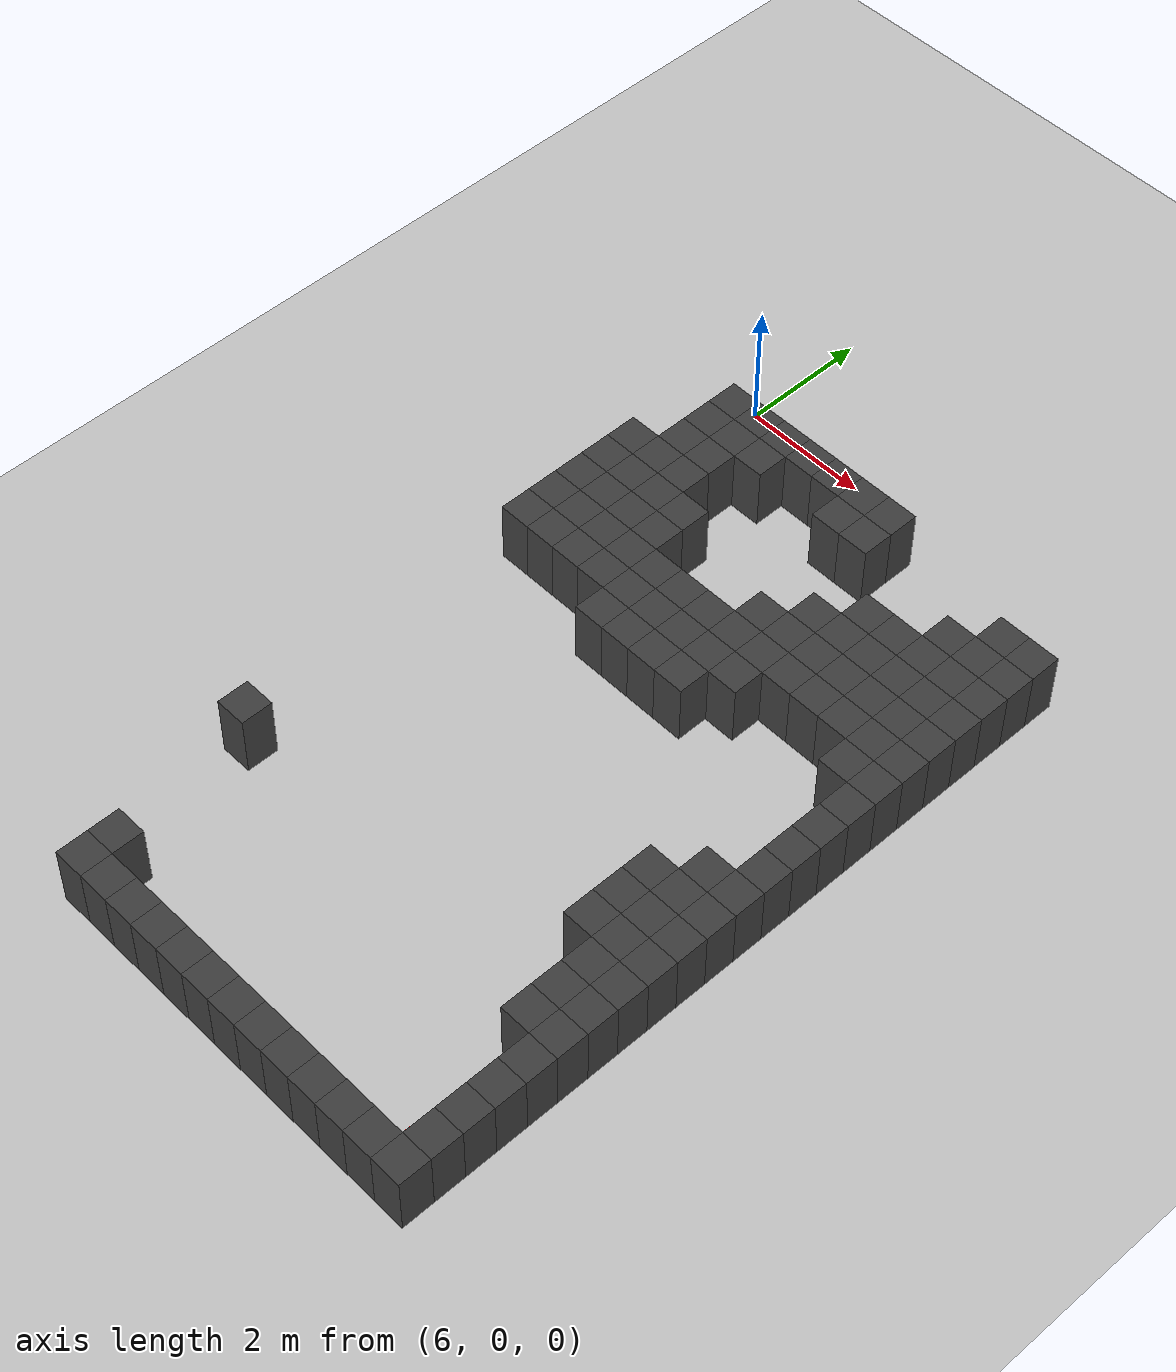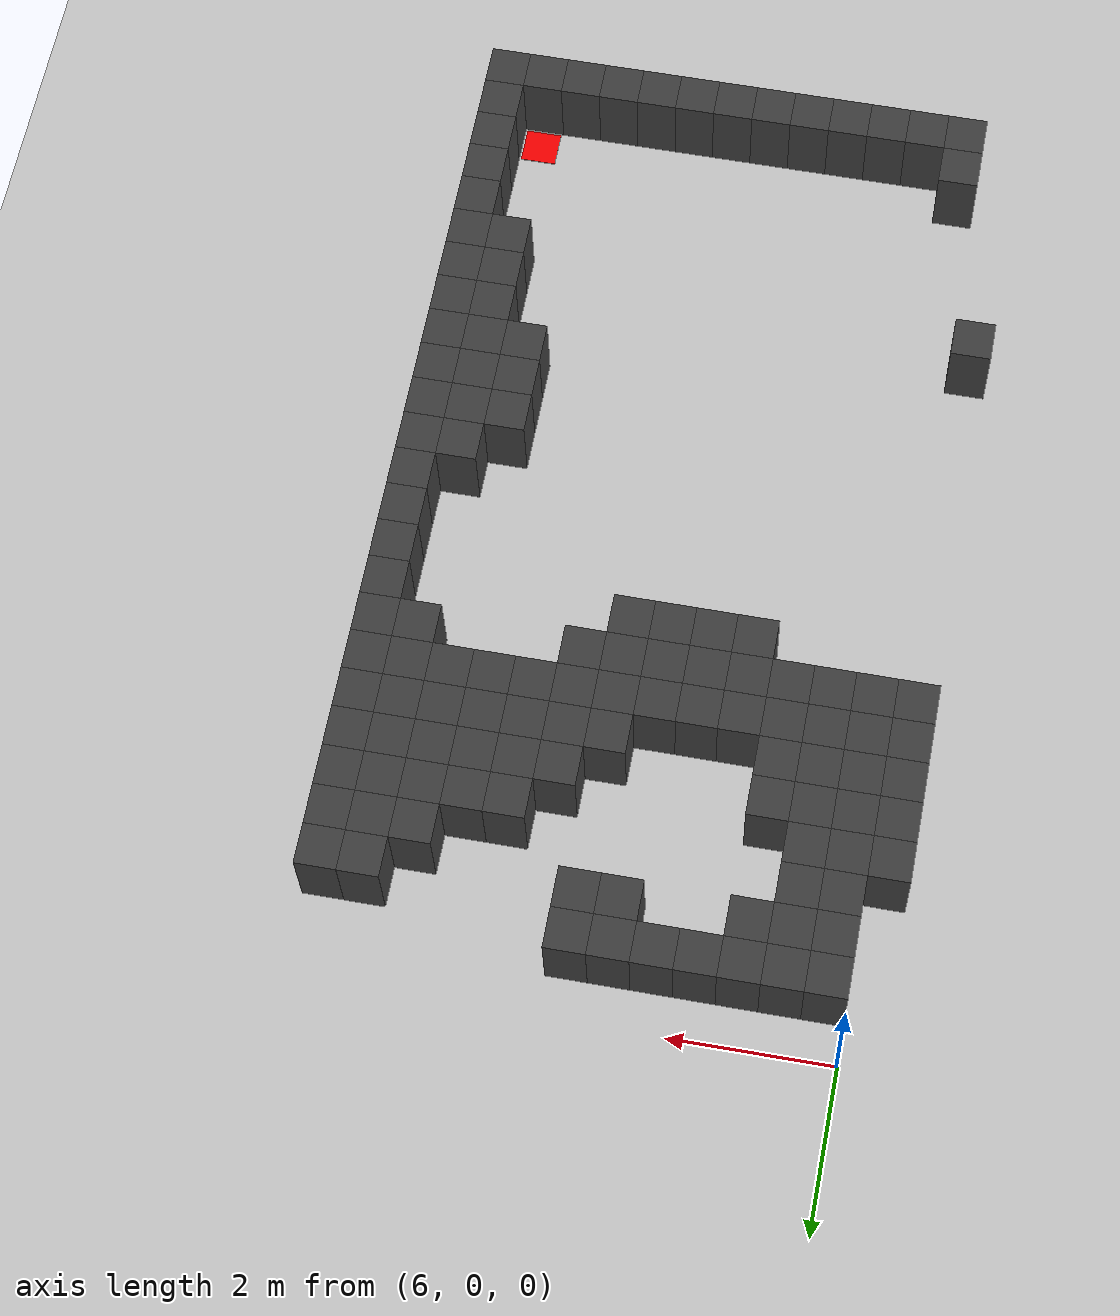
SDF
<sdf version="1.7">
 <world name="map_8074">
  <model name="ground_plane">
   <static>true</static>
   <link name="link">
    <collision name="collision">
     <geometry><plane><normal>0 0 1</normal><size>200 200</size></plane></geometry>
    </collision>
    <visual name="visual">
     <geometry><plane><normal>0 0 1</normal><size>200 200</size></plane></geometry>
     <material><ambient>0.8 0.8 0.8 1</ambient><diffuse>0.8 0.8 0.8 1</diffuse></material>
    </visual>
   </link>
  </model>
  <model name="maze_environment">
   <static>true</static>
   <link name="wall_391">
    <pose>6.250 -0.750 0.500 0 0 0</pose>
    <collision name="col"><geometry><box><size>0.5 0.5 1.0</size></box></geometry></collision>
    <visual name="vis">
     <geometry><box><size>0.5 0.5 1.0</size></box></geometry>
     <material><ambient>0.15 0.15 0.15 1</ambient><diffuse>0.25 0.25 0.25 1</diffuse></material>
    </visual>
   </link>
   <link name="wall_392">
    <pose>6.750 -0.750 0.500 0 0 0</pose>
    <collision name="col"><geometry><box><size>0.5 0.5 1.0</size></box></geometry></collision>
    <visual name="vis">
     <geometry><box><size>0.5 0.5 1.0</size></box></geometry>
     <material><ambient>0.15 0.15 0.15 1</ambient><diffuse>0.25 0.25 0.25 1</diffuse></material>
    </visual>
   </link>
   <link name="wall_393">
    <pose>7.250 -0.750 0.500 0 0 0</pose>
    <collision name="col"><geometry><box><size>0.5 0.5 1.0</size></box></geometry></collision>
    <visual name="vis">
     <geometry><box><size>0.5 0.5 1.0</size></box></geometry>
     <material><ambient>0.15 0.15 0.15 1</ambient><diffuse>0.25 0.25 0.25 1</diffuse></material>
    </visual>
   </link>
   <link name="wall_394">
    <pose>7.750 -0.750 0.500 0 0 0</pose>
    <collision name="col"><geometry><box><size>0.5 0.5 1.0</size></box></geometry></collision>
    <visual name="vis">
     <geometry><box><size>0.5 0.5 1.0</size></box></geometry>
     <material><ambient>0.15 0.15 0.15 1</ambient><diffuse>0.25 0.25 0.25 1</diffuse></material>
    </visual>
   </link>
   <link name="wall_395">
    <pose>8.250 -0.750 0.500 0 0 0</pose>
    <collision name="col"><geometry><box><size>0.5 0.5 1.0</size></box></geometry></collision>
    <visual name="vis">
     <geometry><box><size>0.5 0.5 1.0</size></box></geometry>
     <material><ambient>0.15 0.15 0.15 1</ambient><diffuse>0.25 0.25 0.25 1</diffuse></material>
    </visual>
   </link>
   <link name="wall_396">
    <pose>8.750 -0.750 0.500 0 0 0</pose>
    <collision name="col"><geometry><box><size>0.5 0.5 1.0</size></box></geometry></collision>
    <visual name="vis">
     <geometry><box><size>0.5 0.5 1.0</size></box></geometry>
     <material><ambient>0.15 0.15 0.15 1</ambient><diffuse>0.25 0.25 0.25 1</diffuse></material>
    </visual>
   </link>
   <link name="wall_397">
    <pose>9.250 -0.750 0.500 0 0 0</pose>
    <collision name="col"><geometry><box><size>0.5 0.5 1.0</size></box></geometry></collision>
    <visual name="vis">
     <geometry><box><size>0.5 0.5 1.0</size></box></geometry>
     <material><ambient>0.15 0.15 0.15 1</ambient><diffuse>0.25 0.25 0.25 1</diffuse></material>
    </visual>
   </link>
   <link name="wall_421">
    <pose>6.250 -1.250 0.500 0 0 0</pose>
    <collision name="col"><geometry><box><size>0.5 0.5 1.0</size></box></geometry></collision>
    <visual name="vis">
     <geometry><box><size>0.5 0.5 1.0</size></box></geometry>
     <material><ambient>0.15 0.15 0.15 1</ambient><diffuse>0.25 0.25 0.25 1</diffuse></material>
    </visual>
   </link>
   <link name="wall_422">
    <pose>6.750 -1.250 0.500 0 0 0</pose>
    <collision name="col"><geometry><box><size>0.5 0.5 1.0</size></box></geometry></collision>
    <visual name="vis">
     <geometry><box><size>0.5 0.5 1.0</size></box></geometry>
     <material><ambient>0.15 0.15 0.15 1</ambient><diffuse>0.25 0.25 0.25 1</diffuse></material>
    </visual>
   </link>
   <link name="wall_423">
    <pose>7.250 -1.250 0.500 0 0 0</pose>
    <collision name="col"><geometry><box><size>0.5 0.5 1.0</size></box></geometry></collision>
    <visual name="vis">
     <geometry><box><size>0.5 0.5 1.0</size></box></geometry>
     <material><ambient>0.15 0.15 0.15 1</ambient><diffuse>0.25 0.25 0.25 1</diffuse></material>
    </visual>
   </link>
   <link name="wall_424">
    <pose>8.750 -1.250 0.500 0 0 0</pose>
    <collision name="col"><geometry><box><size>0.5 0.5 1.0</size></box></geometry></collision>
    <visual name="vis">
     <geometry><box><size>0.5 0.5 1.0</size></box></geometry>
     <material><ambient>0.15 0.15 0.15 1</ambient><diffuse>0.25 0.25 0.25 1</diffuse></material>
    </visual>
   </link>
   <link name="wall_425">
    <pose>9.250 -1.250 0.500 0 0 0</pose>
    <collision name="col"><geometry><box><size>0.5 0.5 1.0</size></box></geometry></collision>
    <visual name="vis">
     <geometry><box><size>0.5 0.5 1.0</size></box></geometry>
     <material><ambient>0.15 0.15 0.15 1</ambient><diffuse>0.25 0.25 0.25 1</diffuse></material>
    </visual>
   </link>
   <link name="wall_426">
    <pose>11.750 -1.250 0.500 0 0 0</pose>
    <collision name="col"><geometry><box><size>0.5 0.5 1.0</size></box></geometry></collision>
    <visual name="vis">
     <geometry><box><size>0.5 0.5 1.0</size></box></geometry>
     <material><ambient>0.15 0.15 0.15 1</ambient><diffuse>0.25 0.25 0.25 1</diffuse></material>
    </visual>
   </link>
   <link name="wall_427">
    <pose>12.250 -1.250 0.500 0 0 0</pose>
    <collision name="col"><geometry><box><size>0.5 0.5 1.0</size></box></geometry></collision>
    <visual name="vis">
     <geometry><box><size>0.5 0.5 1.0</size></box></geometry>
     <material><ambient>0.15 0.15 0.15 1</ambient><diffuse>0.25 0.25 0.25 1</diffuse></material>
    </visual>
   </link>
   <link name="wall_445">
    <pose>6.250 -1.750 0.500 0 0 0</pose>
    <collision name="col"><geometry><box><size>0.5 0.5 1.0</size></box></geometry></collision>
    <visual name="vis">
     <geometry><box><size>0.5 0.5 1.0</size></box></geometry>
     <material><ambient>0.15 0.15 0.15 1</ambient><diffuse>0.25 0.25 0.25 1</diffuse></material>
    </visual>
   </link>
   <link name="wall_446">
    <pose>6.750 -1.750 0.500 0 0 0</pose>
    <collision name="col"><geometry><box><size>0.5 0.5 1.0</size></box></geometry></collision>
    <visual name="vis">
     <geometry><box><size>0.5 0.5 1.0</size></box></geometry>
     <material><ambient>0.15 0.15 0.15 1</ambient><diffuse>0.25 0.25 0.25 1</diffuse></material>
    </visual>
   </link>
   <link name="wall_447">
    <pose>11.250 -1.750 0.500 0 0 0</pose>
    <collision name="col"><geometry><box><size>0.5 0.5 1.0</size></box></geometry></collision>
    <visual name="vis">
     <geometry><box><size>0.5 0.5 1.0</size></box></geometry>
     <material><ambient>0.15 0.15 0.15 1</ambient><diffuse>0.25 0.25 0.25 1</diffuse></material>
    </visual>
   </link>
   <link name="wall_448">
    <pose>11.750 -1.750 0.500 0 0 0</pose>
    <collision name="col"><geometry><box><size>0.5 0.5 1.0</size></box></geometry></collision>
    <visual name="vis">
     <geometry><box><size>0.5 0.5 1.0</size></box></geometry>
     <material><ambient>0.15 0.15 0.15 1</ambient><diffuse>0.25 0.25 0.25 1</diffuse></material>
    </visual>
   </link>
   <link name="wall_449">
    <pose>12.250 -1.750 0.500 0 0 0</pose>
    <collision name="col"><geometry><box><size>0.5 0.5 1.0</size></box></geometry></collision>
    <visual name="vis">
     <geometry><box><size>0.5 0.5 1.0</size></box></geometry>
     <material><ambient>0.15 0.15 0.15 1</ambient><diffuse>0.25 0.25 0.25 1</diffuse></material>
    </visual>
   </link>
   <link name="wall_463">
    <pose>5.750 -2.250 0.500 0 0 0</pose>
    <collision name="col"><geometry><box><size>0.5 0.5 1.0</size></box></geometry></collision>
    <visual name="vis">
     <geometry><box><size>0.5 0.5 1.0</size></box></geometry>
     <material><ambient>0.15 0.15 0.15 1</ambient><diffuse>0.25 0.25 0.25 1</diffuse></material>
    </visual>
   </link>
   <link name="wall_464">
    <pose>6.250 -2.250 0.500 0 0 0</pose>
    <collision name="col"><geometry><box><size>0.5 0.5 1.0</size></box></geometry></collision>
    <visual name="vis">
     <geometry><box><size>0.5 0.5 1.0</size></box></geometry>
     <material><ambient>0.15 0.15 0.15 1</ambient><diffuse>0.25 0.25 0.25 1</diffuse></material>
    </visual>
   </link>
   <link name="wall_465">
    <pose>6.750 -2.250 0.500 0 0 0</pose>
    <collision name="col"><geometry><box><size>0.5 0.5 1.0</size></box></geometry></collision>
    <visual name="vis">
     <geometry><box><size>0.5 0.5 1.0</size></box></geometry>
     <material><ambient>0.15 0.15 0.15 1</ambient><diffuse>0.25 0.25 0.25 1</diffuse></material>
    </visual>
   </link>
   <link name="wall_466">
    <pose>10.250 -2.250 0.500 0 0 0</pose>
    <collision name="col"><geometry><box><size>0.5 0.5 1.0</size></box></geometry></collision>
    <visual name="vis">
     <geometry><box><size>0.5 0.5 1.0</size></box></geometry>
     <material><ambient>0.15 0.15 0.15 1</ambient><diffuse>0.25 0.25 0.25 1</diffuse></material>
    </visual>
   </link>
   <link name="wall_467">
    <pose>10.750 -2.250 0.500 0 0 0</pose>
    <collision name="col"><geometry><box><size>0.5 0.5 1.0</size></box></geometry></collision>
    <visual name="vis">
     <geometry><box><size>0.5 0.5 1.0</size></box></geometry>
     <material><ambient>0.15 0.15 0.15 1</ambient><diffuse>0.25 0.25 0.25 1</diffuse></material>
    </visual>
   </link>
   <link name="wall_468">
    <pose>11.250 -2.250 0.500 0 0 0</pose>
    <collision name="col"><geometry><box><size>0.5 0.5 1.0</size></box></geometry></collision>
    <visual name="vis">
     <geometry><box><size>0.5 0.5 1.0</size></box></geometry>
     <material><ambient>0.15 0.15 0.15 1</ambient><diffuse>0.25 0.25 0.25 1</diffuse></material>
    </visual>
   </link>
   <link name="wall_469">
    <pose>11.750 -2.250 0.500 0 0 0</pose>
    <collision name="col"><geometry><box><size>0.5 0.5 1.0</size></box></geometry></collision>
    <visual name="vis">
     <geometry><box><size>0.5 0.5 1.0</size></box></geometry>
     <material><ambient>0.15 0.15 0.15 1</ambient><diffuse>0.25 0.25 0.25 1</diffuse></material>
    </visual>
   </link>
   <link name="wall_470">
    <pose>12.250 -2.250 0.500 0 0 0</pose>
    <collision name="col"><geometry><box><size>0.5 0.5 1.0</size></box></geometry></collision>
    <visual name="vis">
     <geometry><box><size>0.5 0.5 1.0</size></box></geometry>
     <material><ambient>0.15 0.15 0.15 1</ambient><diffuse>0.25 0.25 0.25 1</diffuse></material>
    </visual>
   </link>
   <link name="wall_483">
    <pose>5.750 -2.750 0.500 0 0 0</pose>
    <collision name="col"><geometry><box><size>0.5 0.5 1.0</size></box></geometry></collision>
    <visual name="vis">
     <geometry><box><size>0.5 0.5 1.0</size></box></geometry>
     <material><ambient>0.15 0.15 0.15 1</ambient><diffuse>0.25 0.25 0.25 1</diffuse></material>
    </visual>
   </link>
   <link name="wall_484">
    <pose>6.250 -2.750 0.500 0 0 0</pose>
    <collision name="col"><geometry><box><size>0.5 0.5 1.0</size></box></geometry></collision>
    <visual name="vis">
     <geometry><box><size>0.5 0.5 1.0</size></box></geometry>
     <material><ambient>0.15 0.15 0.15 1</ambient><diffuse>0.25 0.25 0.25 1</diffuse></material>
    </visual>
   </link>
   <link name="wall_485">
    <pose>6.750 -2.750 0.500 0 0 0</pose>
    <collision name="col"><geometry><box><size>0.5 0.5 1.0</size></box></geometry></collision>
    <visual name="vis">
     <geometry><box><size>0.5 0.5 1.0</size></box></geometry>
     <material><ambient>0.15 0.15 0.15 1</ambient><diffuse>0.25 0.25 0.25 1</diffuse></material>
    </visual>
   </link>
   <link name="wall_486">
    <pose>7.250 -2.750 0.500 0 0 0</pose>
    <collision name="col"><geometry><box><size>0.5 0.5 1.0</size></box></geometry></collision>
    <visual name="vis">
     <geometry><box><size>0.5 0.5 1.0</size></box></geometry>
     <material><ambient>0.15 0.15 0.15 1</ambient><diffuse>0.25 0.25 0.25 1</diffuse></material>
    </visual>
   </link>
   <link name="wall_487">
    <pose>9.750 -2.750 0.500 0 0 0</pose>
    <collision name="col"><geometry><box><size>0.5 0.5 1.0</size></box></geometry></collision>
    <visual name="vis">
     <geometry><box><size>0.5 0.5 1.0</size></box></geometry>
     <material><ambient>0.15 0.15 0.15 1</ambient><diffuse>0.25 0.25 0.25 1</diffuse></material>
    </visual>
   </link>
   <link name="wall_488">
    <pose>10.250 -2.750 0.500 0 0 0</pose>
    <collision name="col"><geometry><box><size>0.5 0.5 1.0</size></box></geometry></collision>
    <visual name="vis">
     <geometry><box><size>0.5 0.5 1.0</size></box></geometry>
     <material><ambient>0.15 0.15 0.15 1</ambient><diffuse>0.25 0.25 0.25 1</diffuse></material>
    </visual>
   </link>
   <link name="wall_489">
    <pose>10.750 -2.750 0.500 0 0 0</pose>
    <collision name="col"><geometry><box><size>0.5 0.5 1.0</size></box></geometry></collision>
    <visual name="vis">
     <geometry><box><size>0.5 0.5 1.0</size></box></geometry>
     <material><ambient>0.15 0.15 0.15 1</ambient><diffuse>0.25 0.25 0.25 1</diffuse></material>
    </visual>
   </link>
   <link name="wall_490">
    <pose>11.250 -2.750 0.500 0 0 0</pose>
    <collision name="col"><geometry><box><size>0.5 0.5 1.0</size></box></geometry></collision>
    <visual name="vis">
     <geometry><box><size>0.5 0.5 1.0</size></box></geometry>
     <material><ambient>0.15 0.15 0.15 1</ambient><diffuse>0.25 0.25 0.25 1</diffuse></material>
    </visual>
   </link>
   <link name="wall_491">
    <pose>11.750 -2.750 0.500 0 0 0</pose>
    <collision name="col"><geometry><box><size>0.5 0.5 1.0</size></box></geometry></collision>
    <visual name="vis">
     <geometry><box><size>0.5 0.5 1.0</size></box></geometry>
     <material><ambient>0.15 0.15 0.15 1</ambient><diffuse>0.25 0.25 0.25 1</diffuse></material>
    </visual>
   </link>
   <link name="wall_492">
    <pose>12.250 -2.750 0.500 0 0 0</pose>
    <collision name="col"><geometry><box><size>0.5 0.5 1.0</size></box></geometry></collision>
    <visual name="vis">
     <geometry><box><size>0.5 0.5 1.0</size></box></geometry>
     <material><ambient>0.15 0.15 0.15 1</ambient><diffuse>0.25 0.25 0.25 1</diffuse></material>
    </visual>
   </link>
   <link name="wall_505">
    <pose>5.750 -3.250 0.500 0 0 0</pose>
    <collision name="col"><geometry><box><size>0.5 0.5 1.0</size></box></geometry></collision>
    <visual name="vis">
     <geometry><box><size>0.5 0.5 1.0</size></box></geometry>
     <material><ambient>0.15 0.15 0.15 1</ambient><diffuse>0.25 0.25 0.25 1</diffuse></material>
    </visual>
   </link>
   <link name="wall_506">
    <pose>6.250 -3.250 0.500 0 0 0</pose>
    <collision name="col"><geometry><box><size>0.5 0.5 1.0</size></box></geometry></collision>
    <visual name="vis">
     <geometry><box><size>0.5 0.5 1.0</size></box></geometry>
     <material><ambient>0.15 0.15 0.15 1</ambient><diffuse>0.25 0.25 0.25 1</diffuse></material>
    </visual>
   </link>
   <link name="wall_507">
    <pose>6.750 -3.250 0.500 0 0 0</pose>
    <collision name="col"><geometry><box><size>0.5 0.5 1.0</size></box></geometry></collision>
    <visual name="vis">
     <geometry><box><size>0.5 0.5 1.0</size></box></geometry>
     <material><ambient>0.15 0.15 0.15 1</ambient><diffuse>0.25 0.25 0.25 1</diffuse></material>
    </visual>
   </link>
   <link name="wall_508">
    <pose>7.250 -3.250 0.500 0 0 0</pose>
    <collision name="col"><geometry><box><size>0.5 0.5 1.0</size></box></geometry></collision>
    <visual name="vis">
     <geometry><box><size>0.5 0.5 1.0</size></box></geometry>
     <material><ambient>0.15 0.15 0.15 1</ambient><diffuse>0.25 0.25 0.25 1</diffuse></material>
    </visual>
   </link>
   <link name="wall_509">
    <pose>9.250 -3.250 0.500 0 0 0</pose>
    <collision name="col"><geometry><box><size>0.5 0.5 1.0</size></box></geometry></collision>
    <visual name="vis">
     <geometry><box><size>0.5 0.5 1.0</size></box></geometry>
     <material><ambient>0.15 0.15 0.15 1</ambient><diffuse>0.25 0.25 0.25 1</diffuse></material>
    </visual>
   </link>
   <link name="wall_510">
    <pose>9.750 -3.250 0.500 0 0 0</pose>
    <collision name="col"><geometry><box><size>0.5 0.5 1.0</size></box></geometry></collision>
    <visual name="vis">
     <geometry><box><size>0.5 0.5 1.0</size></box></geometry>
     <material><ambient>0.15 0.15 0.15 1</ambient><diffuse>0.25 0.25 0.25 1</diffuse></material>
    </visual>
   </link>
   <link name="wall_511">
    <pose>10.250 -3.250 0.500 0 0 0</pose>
    <collision name="col"><geometry><box><size>0.5 0.5 1.0</size></box></geometry></collision>
    <visual name="vis">
     <geometry><box><size>0.5 0.5 1.0</size></box></geometry>
     <material><ambient>0.15 0.15 0.15 1</ambient><diffuse>0.25 0.25 0.25 1</diffuse></material>
    </visual>
   </link>
   <link name="wall_512">
    <pose>10.750 -3.250 0.500 0 0 0</pose>
    <collision name="col"><geometry><box><size>0.5 0.5 1.0</size></box></geometry></collision>
    <visual name="vis">
     <geometry><box><size>0.5 0.5 1.0</size></box></geometry>
     <material><ambient>0.15 0.15 0.15 1</ambient><diffuse>0.25 0.25 0.25 1</diffuse></material>
    </visual>
   </link>
   <link name="wall_513">
    <pose>11.250 -3.250 0.500 0 0 0</pose>
    <collision name="col"><geometry><box><size>0.5 0.5 1.0</size></box></geometry></collision>
    <visual name="vis">
     <geometry><box><size>0.5 0.5 1.0</size></box></geometry>
     <material><ambient>0.15 0.15 0.15 1</ambient><diffuse>0.25 0.25 0.25 1</diffuse></material>
    </visual>
   </link>
   <link name="wall_514">
    <pose>11.750 -3.250 0.500 0 0 0</pose>
    <collision name="col"><geometry><box><size>0.5 0.5 1.0</size></box></geometry></collision>
    <visual name="vis">
     <geometry><box><size>0.5 0.5 1.0</size></box></geometry>
     <material><ambient>0.15 0.15 0.15 1</ambient><diffuse>0.25 0.25 0.25 1</diffuse></material>
    </visual>
   </link>
   <link name="wall_515">
    <pose>12.250 -3.250 0.500 0 0 0</pose>
    <collision name="col"><geometry><box><size>0.5 0.5 1.0</size></box></geometry></collision>
    <visual name="vis">
     <geometry><box><size>0.5 0.5 1.0</size></box></geometry>
     <material><ambient>0.15 0.15 0.15 1</ambient><diffuse>0.25 0.25 0.25 1</diffuse></material>
    </visual>
   </link>
   <link name="wall_532">
    <pose>5.750 -3.750 0.500 0 0 0</pose>
    <collision name="col"><geometry><box><size>0.5 0.5 1.0</size></box></geometry></collision>
    <visual name="vis">
     <geometry><box><size>0.5 0.5 1.0</size></box></geometry>
     <material><ambient>0.15 0.15 0.15 1</ambient><diffuse>0.25 0.25 0.25 1</diffuse></material>
    </visual>
   </link>
   <link name="wall_533">
    <pose>6.250 -3.750 0.500 0 0 0</pose>
    <collision name="col"><geometry><box><size>0.5 0.5 1.0</size></box></geometry></collision>
    <visual name="vis">
     <geometry><box><size>0.5 0.5 1.0</size></box></geometry>
     <material><ambient>0.15 0.15 0.15 1</ambient><diffuse>0.25 0.25 0.25 1</diffuse></material>
    </visual>
   </link>
   <link name="wall_534">
    <pose>6.750 -3.750 0.500 0 0 0</pose>
    <collision name="col"><geometry><box><size>0.5 0.5 1.0</size></box></geometry></collision>
    <visual name="vis">
     <geometry><box><size>0.5 0.5 1.0</size></box></geometry>
     <material><ambient>0.15 0.15 0.15 1</ambient><diffuse>0.25 0.25 0.25 1</diffuse></material>
    </visual>
   </link>
   <link name="wall_535">
    <pose>7.250 -3.750 0.500 0 0 0</pose>
    <collision name="col"><geometry><box><size>0.5 0.5 1.0</size></box></geometry></collision>
    <visual name="vis">
     <geometry><box><size>0.5 0.5 1.0</size></box></geometry>
     <material><ambient>0.15 0.15 0.15 1</ambient><diffuse>0.25 0.25 0.25 1</diffuse></material>
    </visual>
   </link>
   <link name="wall_536">
    <pose>7.750 -3.750 0.500 0 0 0</pose>
    <collision name="col"><geometry><box><size>0.5 0.5 1.0</size></box></geometry></collision>
    <visual name="vis">
     <geometry><box><size>0.5 0.5 1.0</size></box></geometry>
     <material><ambient>0.15 0.15 0.15 1</ambient><diffuse>0.25 0.25 0.25 1</diffuse></material>
    </visual>
   </link>
   <link name="wall_537">
    <pose>8.250 -3.750 0.500 0 0 0</pose>
    <collision name="col"><geometry><box><size>0.5 0.5 1.0</size></box></geometry></collision>
    <visual name="vis">
     <geometry><box><size>0.5 0.5 1.0</size></box></geometry>
     <material><ambient>0.15 0.15 0.15 1</ambient><diffuse>0.25 0.25 0.25 1</diffuse></material>
    </visual>
   </link>
   <link name="wall_538">
    <pose>8.750 -3.750 0.500 0 0 0</pose>
    <collision name="col"><geometry><box><size>0.5 0.5 1.0</size></box></geometry></collision>
    <visual name="vis">
     <geometry><box><size>0.5 0.5 1.0</size></box></geometry>
     <material><ambient>0.15 0.15 0.15 1</ambient><diffuse>0.25 0.25 0.25 1</diffuse></material>
    </visual>
   </link>
   <link name="wall_539">
    <pose>9.250 -3.750 0.500 0 0 0</pose>
    <collision name="col"><geometry><box><size>0.5 0.5 1.0</size></box></geometry></collision>
    <visual name="vis">
     <geometry><box><size>0.5 0.5 1.0</size></box></geometry>
     <material><ambient>0.15 0.15 0.15 1</ambient><diffuse>0.25 0.25 0.25 1</diffuse></material>
    </visual>
   </link>
   <link name="wall_540">
    <pose>9.750 -3.750 0.500 0 0 0</pose>
    <collision name="col"><geometry><box><size>0.5 0.5 1.0</size></box></geometry></collision>
    <visual name="vis">
     <geometry><box><size>0.5 0.5 1.0</size></box></geometry>
     <material><ambient>0.15 0.15 0.15 1</ambient><diffuse>0.25 0.25 0.25 1</diffuse></material>
    </visual>
   </link>
   <link name="wall_541">
    <pose>10.250 -3.750 0.500 0 0 0</pose>
    <collision name="col"><geometry><box><size>0.5 0.5 1.0</size></box></geometry></collision>
    <visual name="vis">
     <geometry><box><size>0.5 0.5 1.0</size></box></geometry>
     <material><ambient>0.15 0.15 0.15 1</ambient><diffuse>0.25 0.25 0.25 1</diffuse></material>
    </visual>
   </link>
   <link name="wall_542">
    <pose>10.750 -3.750 0.500 0 0 0</pose>
    <collision name="col"><geometry><box><size>0.5 0.5 1.0</size></box></geometry></collision>
    <visual name="vis">
     <geometry><box><size>0.5 0.5 1.0</size></box></geometry>
     <material><ambient>0.15 0.15 0.15 1</ambient><diffuse>0.25 0.25 0.25 1</diffuse></material>
    </visual>
   </link>
   <link name="wall_543">
    <pose>11.250 -3.750 0.500 0 0 0</pose>
    <collision name="col"><geometry><box><size>0.5 0.5 1.0</size></box></geometry></collision>
    <visual name="vis">
     <geometry><box><size>0.5 0.5 1.0</size></box></geometry>
     <material><ambient>0.15 0.15 0.15 1</ambient><diffuse>0.25 0.25 0.25 1</diffuse></material>
    </visual>
   </link>
   <link name="wall_544">
    <pose>11.750 -3.750 0.500 0 0 0</pose>
    <collision name="col"><geometry><box><size>0.5 0.5 1.0</size></box></geometry></collision>
    <visual name="vis">
     <geometry><box><size>0.5 0.5 1.0</size></box></geometry>
     <material><ambient>0.15 0.15 0.15 1</ambient><diffuse>0.25 0.25 0.25 1</diffuse></material>
    </visual>
   </link>
   <link name="wall_545">
    <pose>12.250 -3.750 0.500 0 0 0</pose>
    <collision name="col"><geometry><box><size>0.5 0.5 1.0</size></box></geometry></collision>
    <visual name="vis">
     <geometry><box><size>0.5 0.5 1.0</size></box></geometry>
     <material><ambient>0.15 0.15 0.15 1</ambient><diffuse>0.25 0.25 0.25 1</diffuse></material>
    </visual>
   </link>
   <link name="wall_563">
    <pose>5.750 -4.250 0.500 0 0 0</pose>
    <collision name="col"><geometry><box><size>0.5 0.5 1.0</size></box></geometry></collision>
    <visual name="vis">
     <geometry><box><size>0.5 0.5 1.0</size></box></geometry>
     <material><ambient>0.15 0.15 0.15 1</ambient><diffuse>0.25 0.25 0.25 1</diffuse></material>
    </visual>
   </link>
   <link name="wall_564">
    <pose>6.250 -4.250 0.500 0 0 0</pose>
    <collision name="col"><geometry><box><size>0.5 0.5 1.0</size></box></geometry></collision>
    <visual name="vis">
     <geometry><box><size>0.5 0.5 1.0</size></box></geometry>
     <material><ambient>0.15 0.15 0.15 1</ambient><diffuse>0.25 0.25 0.25 1</diffuse></material>
    </visual>
   </link>
   <link name="wall_565">
    <pose>6.750 -4.250 0.500 0 0 0</pose>
    <collision name="col"><geometry><box><size>0.5 0.5 1.0</size></box></geometry></collision>
    <visual name="vis">
     <geometry><box><size>0.5 0.5 1.0</size></box></geometry>
     <material><ambient>0.15 0.15 0.15 1</ambient><diffuse>0.25 0.25 0.25 1</diffuse></material>
    </visual>
   </link>
   <link name="wall_566">
    <pose>7.250 -4.250 0.500 0 0 0</pose>
    <collision name="col"><geometry><box><size>0.5 0.5 1.0</size></box></geometry></collision>
    <visual name="vis">
     <geometry><box><size>0.5 0.5 1.0</size></box></geometry>
     <material><ambient>0.15 0.15 0.15 1</ambient><diffuse>0.25 0.25 0.25 1</diffuse></material>
    </visual>
   </link>
   <link name="wall_567">
    <pose>7.750 -4.250 0.500 0 0 0</pose>
    <collision name="col"><geometry><box><size>0.5 0.5 1.0</size></box></geometry></collision>
    <visual name="vis">
     <geometry><box><size>0.5 0.5 1.0</size></box></geometry>
     <material><ambient>0.15 0.15 0.15 1</ambient><diffuse>0.25 0.25 0.25 1</diffuse></material>
    </visual>
   </link>
   <link name="wall_568">
    <pose>8.250 -4.250 0.500 0 0 0</pose>
    <collision name="col"><geometry><box><size>0.5 0.5 1.0</size></box></geometry></collision>
    <visual name="vis">
     <geometry><box><size>0.5 0.5 1.0</size></box></geometry>
     <material><ambient>0.15 0.15 0.15 1</ambient><diffuse>0.25 0.25 0.25 1</diffuse></material>
    </visual>
   </link>
   <link name="wall_569">
    <pose>8.750 -4.250 0.500 0 0 0</pose>
    <collision name="col"><geometry><box><size>0.5 0.5 1.0</size></box></geometry></collision>
    <visual name="vis">
     <geometry><box><size>0.5 0.5 1.0</size></box></geometry>
     <material><ambient>0.15 0.15 0.15 1</ambient><diffuse>0.25 0.25 0.25 1</diffuse></material>
    </visual>
   </link>
   <link name="wall_570">
    <pose>9.250 -4.250 0.500 0 0 0</pose>
    <collision name="col"><geometry><box><size>0.5 0.5 1.0</size></box></geometry></collision>
    <visual name="vis">
     <geometry><box><size>0.5 0.5 1.0</size></box></geometry>
     <material><ambient>0.15 0.15 0.15 1</ambient><diffuse>0.25 0.25 0.25 1</diffuse></material>
    </visual>
   </link>
   <link name="wall_571">
    <pose>9.750 -4.250 0.500 0 0 0</pose>
    <collision name="col"><geometry><box><size>0.5 0.5 1.0</size></box></geometry></collision>
    <visual name="vis">
     <geometry><box><size>0.5 0.5 1.0</size></box></geometry>
     <material><ambient>0.15 0.15 0.15 1</ambient><diffuse>0.25 0.25 0.25 1</diffuse></material>
    </visual>
   </link>
   <link name="wall_572">
    <pose>11.750 -4.250 0.500 0 0 0</pose>
    <collision name="col"><geometry><box><size>0.5 0.5 1.0</size></box></geometry></collision>
    <visual name="vis">
     <geometry><box><size>0.5 0.5 1.0</size></box></geometry>
     <material><ambient>0.15 0.15 0.15 1</ambient><diffuse>0.25 0.25 0.25 1</diffuse></material>
    </visual>
   </link>
   <link name="wall_573">
    <pose>12.250 -4.250 0.500 0 0 0</pose>
    <collision name="col"><geometry><box><size>0.5 0.5 1.0</size></box></geometry></collision>
    <visual name="vis">
     <geometry><box><size>0.5 0.5 1.0</size></box></geometry>
     <material><ambient>0.15 0.15 0.15 1</ambient><diffuse>0.25 0.25 0.25 1</diffuse></material>
    </visual>
   </link>
   <link name="wall_588">
    <pose>7.750 -4.750 0.500 0 0 0</pose>
    <collision name="col"><geometry><box><size>0.5 0.5 1.0</size></box></geometry></collision>
    <visual name="vis">
     <geometry><box><size>0.5 0.5 1.0</size></box></geometry>
     <material><ambient>0.15 0.15 0.15 1</ambient><diffuse>0.25 0.25 0.25 1</diffuse></material>
    </visual>
   </link>
   <link name="wall_589">
    <pose>8.250 -4.750 0.500 0 0 0</pose>
    <collision name="col"><geometry><box><size>0.5 0.5 1.0</size></box></geometry></collision>
    <visual name="vis">
     <geometry><box><size>0.5 0.5 1.0</size></box></geometry>
     <material><ambient>0.15 0.15 0.15 1</ambient><diffuse>0.25 0.25 0.25 1</diffuse></material>
    </visual>
   </link>
   <link name="wall_590">
    <pose>8.750 -4.750 0.500 0 0 0</pose>
    <collision name="col"><geometry><box><size>0.5 0.5 1.0</size></box></geometry></collision>
    <visual name="vis">
     <geometry><box><size>0.5 0.5 1.0</size></box></geometry>
     <material><ambient>0.15 0.15 0.15 1</ambient><diffuse>0.25 0.25 0.25 1</diffuse></material>
    </visual>
   </link>
   <link name="wall_591">
    <pose>9.250 -4.750 0.500 0 0 0</pose>
    <collision name="col"><geometry><box><size>0.5 0.5 1.0</size></box></geometry></collision>
    <visual name="vis">
     <geometry><box><size>0.5 0.5 1.0</size></box></geometry>
     <material><ambient>0.15 0.15 0.15 1</ambient><diffuse>0.25 0.25 0.25 1</diffuse></material>
    </visual>
   </link>
   <link name="wall_592">
    <pose>12.250 -4.750 0.500 0 0 0</pose>
    <collision name="col"><geometry><box><size>0.5 0.5 1.0</size></box></geometry></collision>
    <visual name="vis">
     <geometry><box><size>0.5 0.5 1.0</size></box></geometry>
     <material><ambient>0.15 0.15 0.15 1</ambient><diffuse>0.25 0.25 0.25 1</diffuse></material>
    </visual>
   </link>
   <link name="wall_609">
    <pose>12.250 -5.250 0.500 0 0 0</pose>
    <collision name="col"><geometry><box><size>0.5 0.5 1.0</size></box></geometry></collision>
    <visual name="vis">
     <geometry><box><size>0.5 0.5 1.0</size></box></geometry>
     <material><ambient>0.15 0.15 0.15 1</ambient><diffuse>0.25 0.25 0.25 1</diffuse></material>
    </visual>
   </link>
   <link name="wall_626">
    <pose>12.250 -5.750 0.500 0 0 0</pose>
    <collision name="col"><geometry><box><size>0.5 0.5 1.0</size></box></geometry></collision>
    <visual name="vis">
     <geometry><box><size>0.5 0.5 1.0</size></box></geometry>
     <material><ambient>0.15 0.15 0.15 1</ambient><diffuse>0.25 0.25 0.25 1</diffuse></material>
    </visual>
   </link>
   <link name="wall_640">
    <pose>12.250 -6.250 0.500 0 0 0</pose>
    <collision name="col"><geometry><box><size>0.5 0.5 1.0</size></box></geometry></collision>
    <visual name="vis">
     <geometry><box><size>0.5 0.5 1.0</size></box></geometry>
     <material><ambient>0.15 0.15 0.15 1</ambient><diffuse>0.25 0.25 0.25 1</diffuse></material>
    </visual>
   </link>
   <link name="wall_653">
    <pose>11.750 -6.750 0.500 0 0 0</pose>
    <collision name="col"><geometry><box><size>0.5 0.5 1.0</size></box></geometry></collision>
    <visual name="vis">
     <geometry><box><size>0.5 0.5 1.0</size></box></geometry>
     <material><ambient>0.15 0.15 0.15 1</ambient><diffuse>0.25 0.25 0.25 1</diffuse></material>
    </visual>
   </link>
   <link name="wall_654">
    <pose>12.250 -6.750 0.500 0 0 0</pose>
    <collision name="col"><geometry><box><size>0.5 0.5 1.0</size></box></geometry></collision>
    <visual name="vis">
     <geometry><box><size>0.5 0.5 1.0</size></box></geometry>
     <material><ambient>0.15 0.15 0.15 1</ambient><diffuse>0.25 0.25 0.25 1</diffuse></material>
    </visual>
   </link>
   <link name="wall_664">
    <pose>11.250 -7.250 0.500 0 0 0</pose>
    <collision name="col"><geometry><box><size>0.5 0.5 1.0</size></box></geometry></collision>
    <visual name="vis">
     <geometry><box><size>0.5 0.5 1.0</size></box></geometry>
     <material><ambient>0.15 0.15 0.15 1</ambient><diffuse>0.25 0.25 0.25 1</diffuse></material>
    </visual>
   </link>
   <link name="wall_665">
    <pose>11.750 -7.250 0.500 0 0 0</pose>
    <collision name="col"><geometry><box><size>0.5 0.5 1.0</size></box></geometry></collision>
    <visual name="vis">
     <geometry><box><size>0.5 0.5 1.0</size></box></geometry>
     <material><ambient>0.15 0.15 0.15 1</ambient><diffuse>0.25 0.25 0.25 1</diffuse></material>
    </visual>
   </link>
   <link name="wall_666">
    <pose>12.250 -7.250 0.500 0 0 0</pose>
    <collision name="col"><geometry><box><size>0.5 0.5 1.0</size></box></geometry></collision>
    <visual name="vis">
     <geometry><box><size>0.5 0.5 1.0</size></box></geometry>
     <material><ambient>0.15 0.15 0.15 1</ambient><diffuse>0.25 0.25 0.25 1</diffuse></material>
    </visual>
   </link>
   <link name="wall_673">
    <pose>11.250 -7.750 0.500 0 0 0</pose>
    <collision name="col"><geometry><box><size>0.5 0.5 1.0</size></box></geometry></collision>
    <visual name="vis">
     <geometry><box><size>0.5 0.5 1.0</size></box></geometry>
     <material><ambient>0.15 0.15 0.15 1</ambient><diffuse>0.25 0.25 0.25 1</diffuse></material>
    </visual>
   </link>
   <link name="wall_674">
    <pose>11.750 -7.750 0.500 0 0 0</pose>
    <collision name="col"><geometry><box><size>0.5 0.5 1.0</size></box></geometry></collision>
    <visual name="vis">
     <geometry><box><size>0.5 0.5 1.0</size></box></geometry>
     <material><ambient>0.15 0.15 0.15 1</ambient><diffuse>0.25 0.25 0.25 1</diffuse></material>
    </visual>
   </link>
   <link name="wall_675">
    <pose>12.250 -7.750 0.500 0 0 0</pose>
    <collision name="col"><geometry><box><size>0.5 0.5 1.0</size></box></geometry></collision>
    <visual name="vis">
     <geometry><box><size>0.5 0.5 1.0</size></box></geometry>
     <material><ambient>0.15 0.15 0.15 1</ambient><diffuse>0.25 0.25 0.25 1</diffuse></material>
    </visual>
   </link>
   <link name="wall_681">
    <pose>11.250 -8.250 0.500 0 0 0</pose>
    <collision name="col"><geometry><box><size>0.5 0.5 1.0</size></box></geometry></collision>
    <visual name="vis">
     <geometry><box><size>0.5 0.5 1.0</size></box></geometry>
     <material><ambient>0.15 0.15 0.15 1</ambient><diffuse>0.25 0.25 0.25 1</diffuse></material>
    </visual>
   </link>
   <link name="wall_682">
    <pose>11.750 -8.250 0.500 0 0 0</pose>
    <collision name="col"><geometry><box><size>0.5 0.5 1.0</size></box></geometry></collision>
    <visual name="vis">
     <geometry><box><size>0.5 0.5 1.0</size></box></geometry>
     <material><ambient>0.15 0.15 0.15 1</ambient><diffuse>0.25 0.25 0.25 1</diffuse></material>
    </visual>
   </link>
   <link name="wall_683">
    <pose>12.250 -8.250 0.500 0 0 0</pose>
    <collision name="col"><geometry><box><size>0.5 0.5 1.0</size></box></geometry></collision>
    <visual name="vis">
     <geometry><box><size>0.5 0.5 1.0</size></box></geometry>
     <material><ambient>0.15 0.15 0.15 1</ambient><diffuse>0.25 0.25 0.25 1</diffuse></material>
    </visual>
   </link>
   <link name="wall_690">
    <pose>11.750 -8.750 0.500 0 0 0</pose>
    <collision name="col"><geometry><box><size>0.5 0.5 1.0</size></box></geometry></collision>
    <visual name="vis">
     <geometry><box><size>0.5 0.5 1.0</size></box></geometry>
     <material><ambient>0.15 0.15 0.15 1</ambient><diffuse>0.25 0.25 0.25 1</diffuse></material>
    </visual>
   </link>
   <link name="wall_691">
    <pose>12.250 -8.750 0.500 0 0 0</pose>
    <collision name="col"><geometry><box><size>0.5 0.5 1.0</size></box></geometry></collision>
    <visual name="vis">
     <geometry><box><size>0.5 0.5 1.0</size></box></geometry>
     <material><ambient>0.15 0.15 0.15 1</ambient><diffuse>0.25 0.25 0.25 1</diffuse></material>
    </visual>
   </link>
   <link name="wall_698">
    <pose>5.750 -9.250 0.500 0 0 0</pose>
    <collision name="col"><geometry><box><size>0.5 0.5 1.0</size></box></geometry></collision>
    <visual name="vis">
     <geometry><box><size>0.5 0.5 1.0</size></box></geometry>
     <material><ambient>0.15 0.15 0.15 1</ambient><diffuse>0.25 0.25 0.25 1</diffuse></material>
    </visual>
   </link>
   <link name="wall_699">
    <pose>11.750 -9.250 0.500 0 0 0</pose>
    <collision name="col"><geometry><box><size>0.5 0.5 1.0</size></box></geometry></collision>
    <visual name="vis">
     <geometry><box><size>0.5 0.5 1.0</size></box></geometry>
     <material><ambient>0.15 0.15 0.15 1</ambient><diffuse>0.25 0.25 0.25 1</diffuse></material>
    </visual>
   </link>
   <link name="wall_700">
    <pose>12.250 -9.250 0.500 0 0 0</pose>
    <collision name="col"><geometry><box><size>0.5 0.5 1.0</size></box></geometry></collision>
    <visual name="vis">
     <geometry><box><size>0.5 0.5 1.0</size></box></geometry>
     <material><ambient>0.15 0.15 0.15 1</ambient><diffuse>0.25 0.25 0.25 1</diffuse></material>
    </visual>
   </link>
   <link name="wall_710">
    <pose>11.750 -9.750 0.500 0 0 0</pose>
    <collision name="col"><geometry><box><size>0.5 0.5 1.0</size></box></geometry></collision>
    <visual name="vis">
     <geometry><box><size>0.5 0.5 1.0</size></box></geometry>
     <material><ambient>0.15 0.15 0.15 1</ambient><diffuse>0.25 0.25 0.25 1</diffuse></material>
    </visual>
   </link>
   <link name="wall_711">
    <pose>12.250 -9.750 0.500 0 0 0</pose>
    <collision name="col"><geometry><box><size>0.5 0.5 1.0</size></box></geometry></collision>
    <visual name="vis">
     <geometry><box><size>0.5 0.5 1.0</size></box></geometry>
     <material><ambient>0.15 0.15 0.15 1</ambient><diffuse>0.25 0.25 0.25 1</diffuse></material>
    </visual>
   </link>
   <link name="wall_723">
    <pose>12.250 -10.250 0.500 0 0 0</pose>
    <collision name="col"><geometry><box><size>0.5 0.5 1.0</size></box></geometry></collision>
    <visual name="vis">
     <geometry><box><size>0.5 0.5 1.0</size></box></geometry>
     <material><ambient>0.15 0.15 0.15 1</ambient><diffuse>0.25 0.25 0.25 1</diffuse></material>
    </visual>
   </link>
   <link name="wall_739">
    <pose>12.250 -10.750 0.500 0 0 0</pose>
    <collision name="col"><geometry><box><size>0.5 0.5 1.0</size></box></geometry></collision>
    <visual name="vis">
     <geometry><box><size>0.5 0.5 1.0</size></box></geometry>
     <material><ambient>0.15 0.15 0.15 1</ambient><diffuse>0.25 0.25 0.25 1</diffuse></material>
    </visual>
   </link>
   <link name="wall_755">
    <pose>12.250 -11.250 0.500 0 0 0</pose>
    <collision name="col"><geometry><box><size>0.5 0.5 1.0</size></box></geometry></collision>
    <visual name="vis">
     <geometry><box><size>0.5 0.5 1.0</size></box></geometry>
     <material><ambient>0.15 0.15 0.15 1</ambient><diffuse>0.25 0.25 0.25 1</diffuse></material>
    </visual>
   </link>
   <link name="wall_775">
    <pose>6.250 -11.750 0.500 0 0 0</pose>
    <collision name="col"><geometry><box><size>0.5 0.5 1.0</size></box></geometry></collision>
    <visual name="vis">
     <geometry><box><size>0.5 0.5 1.0</size></box></geometry>
     <material><ambient>0.15 0.15 0.15 1</ambient><diffuse>0.25 0.25 0.25 1</diffuse></material>
    </visual>
   </link>
   <link name="wall_776">
    <pose>12.250 -11.750 0.500 0 0 0</pose>
    <collision name="col"><geometry><box><size>0.5 0.5 1.0</size></box></geometry></collision>
    <visual name="vis">
     <geometry><box><size>0.5 0.5 1.0</size></box></geometry>
     <material><ambient>0.15 0.15 0.15 1</ambient><diffuse>0.25 0.25 0.25 1</diffuse></material>
    </visual>
   </link>
   <link name="wall_814">
    <pose>6.250 -12.250 0.500 0 0 0</pose>
    <collision name="col"><geometry><box><size>0.5 0.5 1.0</size></box></geometry></collision>
    <visual name="vis">
     <geometry><box><size>0.5 0.5 1.0</size></box></geometry>
     <material><ambient>0.15 0.15 0.15 1</ambient><diffuse>0.25 0.25 0.25 1</diffuse></material>
    </visual>
   </link>
   <link name="wall_815">
    <pose>6.750 -12.250 0.500 0 0 0</pose>
    <collision name="col"><geometry><box><size>0.5 0.5 1.0</size></box></geometry></collision>
    <visual name="vis">
     <geometry><box><size>0.5 0.5 1.0</size></box></geometry>
     <material><ambient>0.15 0.15 0.15 1</ambient><diffuse>0.25 0.25 0.25 1</diffuse></material>
    </visual>
   </link>
   <link name="wall_816">
    <pose>7.250 -12.250 0.500 0 0 0</pose>
    <collision name="col"><geometry><box><size>0.5 0.5 1.0</size></box></geometry></collision>
    <visual name="vis">
     <geometry><box><size>0.5 0.5 1.0</size></box></geometry>
     <material><ambient>0.15 0.15 0.15 1</ambient><diffuse>0.25 0.25 0.25 1</diffuse></material>
    </visual>
   </link>
   <link name="wall_817">
    <pose>7.750 -12.250 0.500 0 0 0</pose>
    <collision name="col"><geometry><box><size>0.5 0.5 1.0</size></box></geometry></collision>
    <visual name="vis">
     <geometry><box><size>0.5 0.5 1.0</size></box></geometry>
     <material><ambient>0.15 0.15 0.15 1</ambient><diffuse>0.25 0.25 0.25 1</diffuse></material>
    </visual>
   </link>
   <link name="wall_818">
    <pose>8.250 -12.250 0.500 0 0 0</pose>
    <collision name="col"><geometry><box><size>0.5 0.5 1.0</size></box></geometry></collision>
    <visual name="vis">
     <geometry><box><size>0.5 0.5 1.0</size></box></geometry>
     <material><ambient>0.15 0.15 0.15 1</ambient><diffuse>0.25 0.25 0.25 1</diffuse></material>
    </visual>
   </link>
   <link name="wall_819">
    <pose>8.750 -12.250 0.500 0 0 0</pose>
    <collision name="col"><geometry><box><size>0.5 0.5 1.0</size></box></geometry></collision>
    <visual name="vis">
     <geometry><box><size>0.5 0.5 1.0</size></box></geometry>
     <material><ambient>0.15 0.15 0.15 1</ambient><diffuse>0.25 0.25 0.25 1</diffuse></material>
    </visual>
   </link>
   <link name="wall_820">
    <pose>9.250 -12.250 0.500 0 0 0</pose>
    <collision name="col"><geometry><box><size>0.5 0.5 1.0</size></box></geometry></collision>
    <visual name="vis">
     <geometry><box><size>0.5 0.5 1.0</size></box></geometry>
     <material><ambient>0.15 0.15 0.15 1</ambient><diffuse>0.25 0.25 0.25 1</diffuse></material>
    </visual>
   </link>
   <link name="wall_821">
    <pose>9.750 -12.250 0.500 0 0 0</pose>
    <collision name="col"><geometry><box><size>0.5 0.5 1.0</size></box></geometry></collision>
    <visual name="vis">
     <geometry><box><size>0.5 0.5 1.0</size></box></geometry>
     <material><ambient>0.15 0.15 0.15 1</ambient><diffuse>0.25 0.25 0.25 1</diffuse></material>
    </visual>
   </link>
   <link name="wall_822">
    <pose>10.250 -12.250 0.500 0 0 0</pose>
    <collision name="col"><geometry><box><size>0.5 0.5 1.0</size></box></geometry></collision>
    <visual name="vis">
     <geometry><box><size>0.5 0.5 1.0</size></box></geometry>
     <material><ambient>0.15 0.15 0.15 1</ambient><diffuse>0.25 0.25 0.25 1</diffuse></material>
    </visual>
   </link>
   <link name="wall_823">
    <pose>10.750 -12.250 0.500 0 0 0</pose>
    <collision name="col"><geometry><box><size>0.5 0.5 1.0</size></box></geometry></collision>
    <visual name="vis">
     <geometry><box><size>0.5 0.5 1.0</size></box></geometry>
     <material><ambient>0.15 0.15 0.15 1</ambient><diffuse>0.25 0.25 0.25 1</diffuse></material>
    </visual>
   </link>
   <link name="wall_824">
    <pose>11.250 -12.250 0.500 0 0 0</pose>
    <collision name="col"><geometry><box><size>0.5 0.5 1.0</size></box></geometry></collision>
    <visual name="vis">
     <geometry><box><size>0.5 0.5 1.0</size></box></geometry>
     <material><ambient>0.15 0.15 0.15 1</ambient><diffuse>0.25 0.25 0.25 1</diffuse></material>
    </visual>
   </link>
   <link name="wall_825">
    <pose>11.750 -12.250 0.500 0 0 0</pose>
    <collision name="col"><geometry><box><size>0.5 0.5 1.0</size></box></geometry></collision>
    <visual name="vis">
     <geometry><box><size>0.5 0.5 1.0</size></box></geometry>
     <material><ambient>0.15 0.15 0.15 1</ambient><diffuse>0.25 0.25 0.25 1</diffuse></material>
    </visual>
   </link>
   <link name="wall_826">
    <pose>12.250 -12.250 0.500 0 0 0</pose>
    <collision name="col"><geometry><box><size>0.5 0.5 1.0</size></box></geometry></collision>
    <visual name="vis">
     <geometry><box><size>0.5 0.5 1.0</size></box></geometry>
     <material><ambient>0.15 0.15 0.15 1</ambient><diffuse>0.25 0.25 0.25 1</diffuse></material>
    </visual>
   </link>
   <link name="goal_zone">
    <pose>11.750 -11.750 0.005 0 0 0</pose>
    <visual name="vis">
     <geometry><box><size>0.45 0.45 0.01</size></box></geometry>
     <material>
      <ambient>1.0 0.0 0.0 1</ambient>
      <diffuse>1.0 0.0 0.0 1</diffuse>
      <emissive>0.60 0.00 0.00 1</emissive>
     </material>
    </visual>
   </link>
  </model>
 </world>
</sdf>
